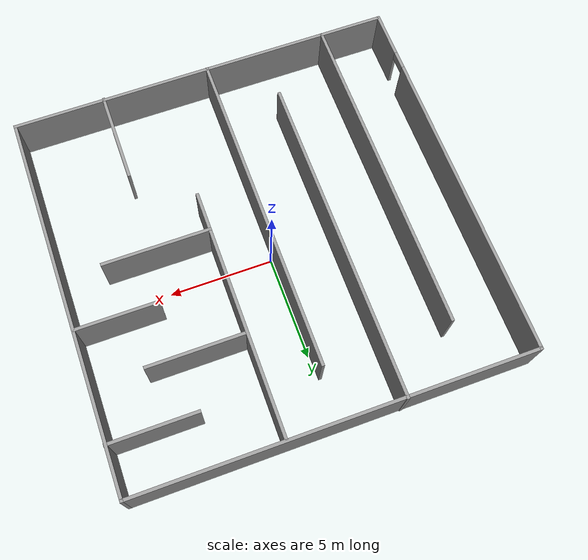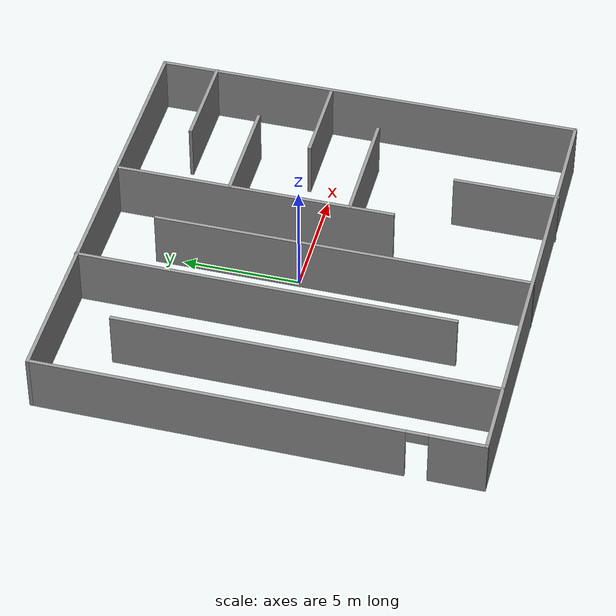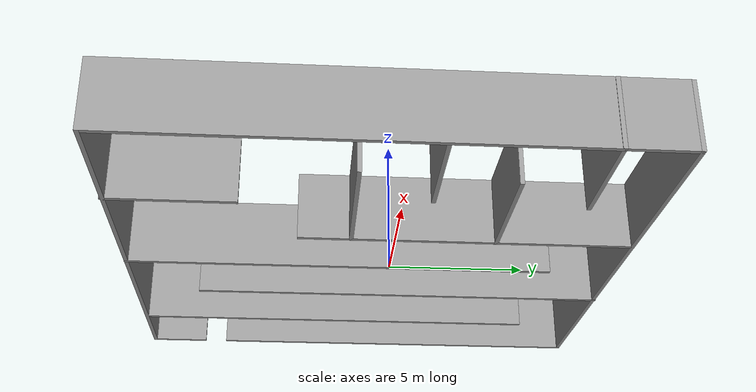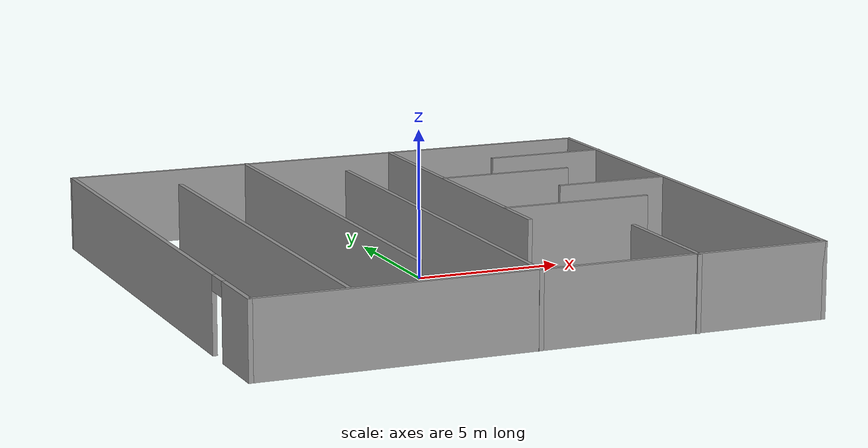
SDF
<?xml version='1.0'?>
<sdf version='1.7'>
  <model name='walls'>
    <pose>0.124523 -0.607004 0 0 -0 0</pose>
    <link name='Wall_19'>
      <collision name='Wall_19_Collision'>
        <geometry>
          <box>
            <size>19 0.15 2.5</size>
          </box>
        </geometry>
        <pose>0 0 1.25 0 -0 0</pose>
      </collision>
      <visual name='Wall_19_Visual'>
        <pose>0 0 1.25 0 -0 0</pose>
        <geometry>
          <box>
            <size>19 0.15 2.5</size>
          </box>
        </geometry>
        <material>
          <script>
            <uri>file://media/materials/scripts/gazebo.material</uri>
            <name>Gazebo/Grey</name>
          </script>
          <ambient>1 1 1 1</ambient>
        </material>
        <meta>
          <layer>0</layer>
        </meta>
      </visual>
      <pose>-0.008258 -9.16695 0 0 -0 0</pose>
    </link>
    <link name='Wall_20'>
      <collision name='Wall_20_Collision'>
        <geometry>
          <box>
            <size>18.5 0.15 2.5</size>
          </box>
        </geometry>
        <pose>0 0 1.25 0 -0 0</pose>
      </collision>
      <visual name='Wall_20_Visual'>
        <pose>0 0 1.25 0 -0 0</pose>
        <geometry>
          <box>
            <size>18.5 0.15 2.5</size>
          </box>
        </geometry>
        <material>
          <script>
            <uri>file://media/materials/scripts/gazebo.material</uri>
            <name>Gazebo/Grey</name>
          </script>
          <ambient>1 1 1 1</ambient>
        </material>
        <meta>
          <layer>0</layer>
        </meta>
      </visual>
      <pose>9.41674 0.008045 0 0 -0 1.5708</pose>
    </link>
    <link name='Wall_21'>
      <collision name='Wall_21_Collision'>
        <geometry>
          <box>
            <size>19 0.15 2.5</size>
          </box>
        </geometry>
        <pose>0 0 1.25 0 -0 0</pose>
      </collision>
      <visual name='Wall_21_Visual'>
        <pose>0 0 1.25 0 -0 0</pose>
        <geometry>
          <box>
            <size>19 0.15 2.5</size>
          </box>
        </geometry>
        <material>
          <script>
            <uri>file://media/materials/scripts/gazebo.material</uri>
            <name>Gazebo/Grey</name>
          </script>
          <ambient>1 1 1 1</ambient>
        </material>
        <meta>
          <layer>0</layer>
        </meta>
      </visual>
      <pose>-0.008258 9.18304 0 0 -0 3.14159</pose>
    </link>
    <link name='Wall_22'>
      <pose>-9.43326 0.008045 0 0 -0 -1.5708</pose>
      <visual name='Wall_22_Visual_0'>
        <pose>-1.61271 0 1.25 0 -0 0</pose>
        <geometry>
          <box>
            <size>15.2746 0.15 2.5</size>
          </box>
        </geometry>
        <material>
          <script>
            <uri>file://media/materials/scripts/gazebo.material</uri>
            <name>Gazebo/Grey</name>
          </script>
          <ambient>1 1 1 1</ambient>
        </material>
        <meta>
          <layer>0</layer>
        </meta>
      </visual>
      <collision name='Wall_22_Collision_0'>
        <geometry>
          <box>
            <size>15.2746 0.15 2.5</size>
          </box>
        </geometry>
        <pose>-1.61271 0 1.25 0 -0 0</pose>
      </collision>
      <visual name='Wall_22_Visual_1'>
        <pose>8.08729 0 1.25 0 -0 0</pose>
        <geometry>
          <box>
            <size>2.32543 0.15 2.5</size>
          </box>
        </geometry>
        <material>
          <script>
            <uri>file://media/materials/scripts/gazebo.material</uri>
            <name>Gazebo/Grey</name>
          </script>
          <ambient>1 1 1 1</ambient>
        </material>
        <meta>
          <layer>0</layer>
        </meta>
      </visual>
      <collision name='Wall_22_Collision_1'>
        <geometry>
          <box>
            <size>2.32543 0.15 2.5</size>
          </box>
        </geometry>
        <pose>8.08729 0 1.25 0 -0 0</pose>
      </collision>
      <visual name='Wall_22_Visual_2'>
        <pose>6.47457 0 2.25 0 -0 0</pose>
        <geometry>
          <box>
            <size>0.9 0.15 0.5</size>
          </box>
        </geometry>
        <material>
          <script>
            <uri>file://media/materials/scripts/gazebo.material</uri>
            <name>Gazebo/Grey</name>
          </script>
          <ambient>1 1 1 1</ambient>
        </material>
        <meta>
          <layer>0</layer>
        </meta>
      </visual>
      <collision name='Wall_22_Collision_2'>
        <geometry>
          <box>
            <size>0.9 0.15 0.5</size>
          </box>
        </geometry>
        <pose>6.47457 0 2.25 0 -0 0</pose>
      </collision>
    </link>
    <link name='Wall_24'>
      <collision name='Wall_24_Collision'>
        <geometry>
          <box>
            <size>16 0.15 2.5</size>
          </box>
        </geometry>
        <pose>0 0 1.25 0 -0 0</pose>
      </collision>
      <visual name='Wall_24_Visual'>
        <pose>0 0 1.25 0 -0 0</pose>
        <geometry>
          <box>
            <size>16 0.15 2.5</size>
          </box>
        </geometry>
        <material>
          <script>
            <uri>file://media/materials/scripts/gazebo.material</uri>
            <name>Gazebo/Grey</name>
          </script>
          <ambient>1 1 1 1</ambient>
        </material>
        <meta>
          <layer>0</layer>
        </meta>
      </visual>
      <pose>-6.34713 -1.21734 0 0 -0 1.5708</pose>
    </link>
    <link name='Wall_26'>
      <collision name='Wall_26_Collision'>
        <geometry>
          <box>
            <size>16 0.15 2.5</size>
          </box>
        </geometry>
        <pose>0 0 1.25 0 -0 0</pose>
      </collision>
      <visual name='Wall_26_Visual'>
        <pose>0 0 1.25 0 -0 0</pose>
        <geometry>
          <box>
            <size>16 0.15 2.5</size>
          </box>
        </geometry>
        <material>
          <script>
            <uri>file://media/materials/scripts/gazebo.material</uri>
            <name>Gazebo/Grey</name>
          </script>
          <ambient>1 1 1 1</ambient>
        </material>
        <meta>
          <layer>0</layer>
        </meta>
      </visual>
      <pose>-3.15675 1.28594 0 0 -0 -1.5708</pose>
    </link>
    <link name='Wall_28'>
      <collision name='Wall_28_Collision'>
        <geometry>
          <box>
            <size>16 0.15 2.5</size>
          </box>
        </geometry>
        <pose>0 0 1.25 0 -0 0</pose>
      </collision>
      <visual name='Wall_28_Visual'>
        <pose>0 0 1.25 0 -0 0</pose>
        <geometry>
          <box>
            <size>16 0.15 2.5</size>
          </box>
        </geometry>
        <material>
          <script>
            <uri>file://media/materials/scripts/gazebo.material</uri>
            <name>Gazebo/Grey</name>
          </script>
          <ambient>1 1 1 1</ambient>
        </material>
        <meta>
          <layer>0</layer>
        </meta>
      </visual>
      <pose>-0.275112 -1.25164 0 0 -0 1.5708</pose>
    </link>
    <link name='Wall_30'>
      <collision name='Wall_30_Collision'>
        <geometry>
          <box>
            <size>12 0.15 2.5</size>
          </box>
        </geometry>
        <pose>0 0 1.25 0 -0 0</pose>
      </collision>
      <visual name='Wall_30_Visual'>
        <pose>0 0 1.25 0 -0 0</pose>
        <geometry>
          <box>
            <size>12 0.15 2.5</size>
          </box>
        </geometry>
        <material>
          <script>
            <uri>file://media/materials/scripts/gazebo.material</uri>
            <name>Gazebo/Grey</name>
          </script>
          <ambient>1 1 1 1</ambient>
        </material>
        <meta>
          <layer>0</layer>
        </meta>
      </visual>
      <pose>2.29778 3.14872 0 0 -0 -1.5708</pose>
    </link>
    <link name='Wall_32'>
      <collision name='Wall_32_Collision'>
        <geometry>
          <box>
            <size>4.5 0.15 2.5</size>
          </box>
        </geometry>
        <pose>0 0 1.25 0 -0 0</pose>
      </collision>
      <visual name='Wall_32_Visual'>
        <pose>0 0 1.25 0 -0 0</pose>
        <geometry>
          <box>
            <size>4.5 0.15 2.5</size>
          </box>
        </geometry>
        <material>
          <script>
            <uri>file://media/materials/scripts/gazebo.material</uri>
            <name>Gazebo/Grey</name>
          </script>
          <ambient>1 1 1 1</ambient>
        </material>
        <meta>
          <layer>0</layer>
        </meta>
      </visual>
      <pose>5.00789 -7.03594 0 0 -0 1.5708</pose>
    </link>
    <link name='Wall_35'>
      <collision name='Wall_35_Collision'>
        <geometry>
          <box>
            <size>4.25 0.15 2.5</size>
          </box>
        </geometry>
        <pose>0 0 1.25 0 -0 0</pose>
      </collision>
      <visual name='Wall_35_Visual'>
        <pose>0 0 1.25 0 -0 0</pose>
        <geometry>
          <box>
            <size>4.25 0.15 2.5</size>
          </box>
        </geometry>
        <material>
          <script>
            <uri>file://media/materials/scripts/gazebo.material</uri>
            <name>Gazebo/Grey</name>
          </script>
          <ambient>1 1 1 1</ambient>
        </material>
        <meta>
          <layer>0</layer>
        </meta>
      </visual>
      <pose>7.38326 6.80958 0 0 -0 3.14159</pose>
    </link>
    <link name='Wall_41'>
      <collision name='Wall_41_Collision'>
        <geometry>
          <box>
            <size>4.75 0.15 2.5</size>
          </box>
        </geometry>
        <pose>0 0 1.25 0 -0 0</pose>
      </collision>
      <visual name='Wall_41_Visual'>
        <pose>0 0 1.25 0 -0 0</pose>
        <geometry>
          <box>
            <size>4.75 0.15 2.5</size>
          </box>
        </geometry>
        <material>
          <script>
            <uri>file://media/materials/scripts/gazebo.material</uri>
            <name>Gazebo/Grey</name>
          </script>
          <ambient>1 1 1 1</ambient>
        </material>
        <meta>
          <layer>0</layer>
        </meta>
      </visual>
      <pose>4.63208 4.23669 0 0 -0 0</pose>
    </link>
    <link name='Wall_45'>
      <collision name='Wall_45_Collision'>
        <geometry>
          <box>
            <size>4 0.15 2.5</size>
          </box>
        </geometry>
        <pose>0 0 1.25 0 -0 0</pose>
      </collision>
      <visual name='Wall_45_Visual'>
        <pose>0 0 1.25 0 -0 0</pose>
        <geometry>
          <box>
            <size>4 0.15 2.5</size>
          </box>
        </geometry>
        <material>
          <script>
            <uri>file://media/materials/scripts/gazebo.material</uri>
            <name>Gazebo/Grey</name>
          </script>
          <ambient>1 1 1 1</ambient>
        </material>
        <meta>
          <layer>0</layer>
        </meta>
      </visual>
      <pose>7.43965 1.59519 0 0 -0 3.14159</pose>
    </link>
    <link name='Wall_49'>
      <collision name='Wall_49_Collision'>
        <geometry>
          <box>
            <size>5.25 0.15 2.5</size>
          </box>
        </geometry>
        <pose>0 0 1.25 0 -0 0</pose>
      </collision>
      <visual name='Wall_49_Visual'>
        <pose>0 0 1.25 0 -0 0</pose>
        <geometry>
          <box>
            <size>5.25 0.15 2.5</size>
          </box>
        </geometry>
        <material>
          <script>
            <uri>file://media/materials/scripts/gazebo.material</uri>
            <name>Gazebo/Grey</name>
          </script>
          <ambient>1 1 1 1</ambient>
        </material>
        <meta>
          <layer>0</layer>
        </meta>
      </visual>
      <pose>4.84778 -0.943393 0 0 -0 0</pose>
    </link>
    <static>1</static>
  </model>
</sdf>
